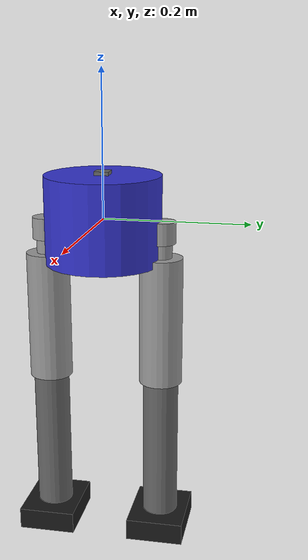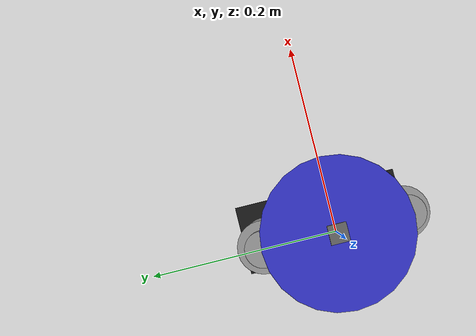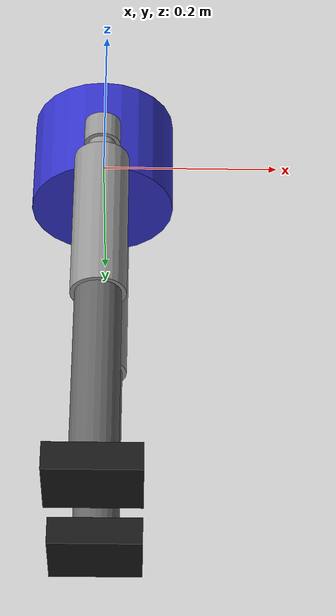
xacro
<?xml version="1.0"?>
<robot name="biped_digitigrade" xmlns:xacro="http://www.ros.org/wiki/xacro">

  <!--
    逆関節（Digitigrade/鳥脚型）二脚ロボット URDF

    特徴:
    - 膝が前方に曲がる逆関節構造
    - 片脚5関節 × 2脚（左右対称）
    - 関節構成: 腰ヨー, 股関節ロール, 股関節ピッチ, 膝ピッチ, 足首ピッチ
    - IMUリンク: 胴体上面中央に配置（強化学習・状態推定用）
  -->

  <!-- リンク長パラメータ (example_gait.pyと一致) -->
  <xacro:property name="hip_width" value="0.16" />      <!-- 左右の股関節間距離 [m] -->
  <xacro:property name="hip_yaw_length" value="0.03" /> <!-- ヨー軸リンク長 [m] -->
  <xacro:property name="hip_roll_length" value="0.02" /><!-- ロール軸リンク長 [m] -->
  <xacro:property name="thigh_length" value="0.18" />   <!-- 大腿部長さ [m] -->
  <xacro:property name="shank_length" value="0.20" />   <!-- 下腿部長さ [m] -->
  <xacro:property name="foot_length" value="0.10" />    <!-- 足部長さ [m] -->

  <!-- 視覚的なリンク半径 -->
  <xacro:property name="base_radius" value="0.08" />
  <xacro:property name="thigh_radius" value="0.03" />
  <xacro:property name="shank_radius" value="0.025" />
  <xacro:property name="foot_width" value="0.08" />
  <xacro:property name="foot_height" value="0.03" />

  <!-- マテリアル定義 -->
  <material name="blue">
    <color rgba="0.2 0.2 0.8 1.0"/>
  </material>

  <material name="gray">
    <color rgba="0.6 0.6 0.6 1.0"/>
  </material>

  <material name="dark_gray">
    <color rgba="0.4 0.4 0.4 1.0"/>
  </material>

  <material name="black">
    <color rgba="0.1 0.1 0.1 1.0"/>
  </material>

  <!-- Base Link (胴体) -->
  <link name="base_link">
    <visual>
      <origin xyz="0 0 0" rpy="0 0 0"/>
      <geometry>
        <cylinder radius="${base_radius}" length="0.12"/>
      </geometry>
      <material name="blue"/>
    </visual>
    <collision>
      <origin xyz="0 0 0" rpy="0 0 0"/>
      <geometry>
        <cylinder radius="${base_radius}" length="0.12"/>
      </geometry>
    </collision>
    <inertial>
      <mass value="3.0"/>
      <origin xyz="0 0 0" rpy="0 0 0"/>
      <inertia ixx="0.05" ixy="0" ixz="0" iyy="0.05" iyz="0" izz="0.05"/>
    </inertial>
  </link>

  <!-- IMU Link -->
  <!--
    IMUセンサの取り付け位置を定義するフレーム
    - URDFではリンク+固定ジョイントとして定義（ROS 2標準）
    - MuJoCo変換時にはsiteとして扱われ、gyro/accelerometer等のセンサを配置可能
    - 質量・慣性は無視できる程度の小さい値（シミュレーションに影響しない）
  -->
  <link name="imu_link">
    <visual>
      <origin xyz="0 0 0" rpy="0 0 0"/>
      <geometry>
        <box size="0.02 0.02 0.01"/>
      </geometry>
      <material name="dark_gray"/>
    </visual>
    <inertial>
      <mass value="0.01"/>
      <origin xyz="0 0 0" rpy="0 0 0"/>
      <inertia ixx="1e-6" ixy="0" ixz="0" iyy="1e-6" iyz="0" izz="1e-6"/>
    </inertial>
  </link>

  <joint name="imu_joint" type="fixed">
    <parent link="base_link"/>
    <child link="imu_link"/>
    <!-- IMUは胴体上面中央に配置 -->
    <origin xyz="0 0 0.06" rpy="0 0 0"/>
  </joint>

  <!-- 脚マクロ定義 -->
  <xacro:macro name="leg" params="side reflect">

    <!--
      関節命名規則:
      - 左脚 (side=left, reflect=1):  j11, j12, j13, j14, j15
      - 右脚 (side=right, reflect=-1): j21, j22, j23, j24, j25
    -->

    <!-- j11/j21: Hip Yaw Joint (腰ヨー) -->
    <joint name="${side}_hip_yaw_joint" type="revolute">
      <parent link="base_link"/>
      <child link="${side}_hip_yaw_link"/>
      <origin xyz="0 ${reflect * hip_width/2} 0" rpy="0 0 0"/>
      <axis xyz="0 0 1"/>  <!-- Z軸回転（ヨー） -->
      <limit lower="${-30 * pi / 180}" upper="${30 * pi / 180}" effort="50" velocity="5"/>
      <dynamics damping="0.1" friction="0.1"/>
    </joint>

    <link name="${side}_hip_yaw_link">
      <visual>
        <origin xyz="0 0 ${-hip_yaw_length/2}" rpy="0 0 0"/>
        <geometry>
          <cylinder radius="0.02" length="${hip_yaw_length}"/>
        </geometry>
        <material name="gray"/>
      </visual>
      <inertial>
        <mass value="0.3"/>
        <origin xyz="0 0 ${-hip_yaw_length/2}" rpy="0 0 0"/>
        <inertia ixx="0.001" ixy="0" ixz="0" iyy="0.001" iyz="0" izz="0.001"/>
      </inertial>
    </link>

    <!-- j12/j22: Hip Roll Joint (股関節ロール) -->
    <joint name="${side}_hip_roll_joint" type="revolute">
      <parent link="${side}_hip_yaw_link"/>
      <child link="${side}_hip_roll_link"/>
      <origin xyz="0 0 ${-hip_yaw_length}" rpy="0 0 0"/>
      <axis xyz="1 0 0"/>  <!-- X軸回転（ロール） -->
      <limit lower="${-20 * pi / 180}" upper="${20 * pi / 180}" effort="50" velocity="5"/>
      <dynamics damping="0.1" friction="0.1"/>
    </joint>

    <link name="${side}_hip_roll_link">
      <visual>
        <origin xyz="0 0 ${-hip_roll_length/2}" rpy="0 0 0"/>
        <geometry>
          <cylinder radius="0.015" length="${hip_roll_length}"/>
        </geometry>
        <material name="gray"/>
      </visual>
      <inertial>
        <mass value="0.2"/>
        <origin xyz="0 0 ${-hip_roll_length/2}" rpy="0 0 0"/>
        <inertia ixx="0.0005" ixy="0" ixz="0" iyy="0.0005" iyz="0" izz="0.0005"/>
      </inertial>
    </link>

    <!-- j13/j23: Hip Pitch Joint (股関節ピッチ) -->
    <joint name="${side}_hip_pitch_joint" type="revolute">
      <parent link="${side}_hip_roll_link"/>
      <child link="${side}_thigh_link"/>
      <origin xyz="0 0 ${-hip_roll_length}" rpy="0 0 0"/>
      <axis xyz="0 1 0"/>  <!-- Y軸回転（ピッチ） -->
      <limit lower="${-90 * pi / 180}" upper="${90 * pi / 180}" effort="100" velocity="10"/>
      <dynamics damping="0.2" friction="0.15"/>
    </joint>

    <link name="${side}_thigh_link">
      <visual>
        <origin xyz="0 0 ${-thigh_length/2}" rpy="0 0 0"/>
        <geometry>
          <cylinder radius="${thigh_radius}" length="${thigh_length}"/>
        </geometry>
        <material name="gray"/>
      </visual>
      <collision>
        <origin xyz="0 0 ${-thigh_length/2}" rpy="0 0 0"/>
        <geometry>
          <cylinder radius="${thigh_radius}" length="${thigh_length}"/>
        </geometry>
      </collision>
      <inertial>
        <mass value="1.0"/>
        <origin xyz="0 0 ${-thigh_length/2}" rpy="0 0 0"/>
        <inertia ixx="0.01" ixy="0" ixz="0" iyy="0.01" iyz="0" izz="0.001"/>
      </inertial>
    </link>

    <!-- j14/j24: Knee Pitch Joint (膝ピッチ) - 逆関節：前方に曲がる -->
    <joint name="${side}_knee_pitch_joint" type="revolute">
      <parent link="${side}_thigh_link"/>
      <child link="${side}_shank_link"/>
      <origin xyz="0 0 ${-thigh_length}" rpy="0 0 0"/>
      <axis xyz="0 1 0"/>  <!-- Y軸回転（ピッチ） -->
      <!-- 逆関節: 負の角度で前方に曲がる -->
      <limit lower="${-120 * pi / 180}" upper="${0 * pi / 180}" effort="100" velocity="10"/>
      <dynamics damping="0.2" friction="0.15"/>
    </joint>

    <link name="${side}_shank_link">
      <visual>
        <origin xyz="0 0 ${-shank_length/2}" rpy="0 0 0"/>
        <geometry>
          <cylinder radius="${shank_radius}" length="${shank_length}"/>
        </geometry>
        <material name="dark_gray"/>
      </visual>
      <collision>
        <origin xyz="0 0 ${-shank_length/2}" rpy="0 0 0"/>
        <geometry>
          <cylinder radius="${shank_radius}" length="${shank_length}"/>
        </geometry>
      </collision>
      <inertial>
        <mass value="0.6"/>
        <origin xyz="0 0 ${-shank_length/2}" rpy="0 0 0"/>
        <inertia ixx="0.005" ixy="0" ixz="0" iyy="0.005" iyz="0" izz="0.0005"/>
      </inertial>
    </link>

    <!-- j15/j25: Ankle Pitch Joint (足首ピッチ) -->
    <joint name="${side}_ankle_pitch_joint" type="revolute">
      <parent link="${side}_shank_link"/>
      <child link="${side}_foot_link"/>
      <origin xyz="0 0 ${-shank_length}" rpy="0 0 0"/>
      <axis xyz="0 1 0"/>  <!-- Y軸回転（ピッチ） -->
      <limit lower="${-45 * pi / 180}" upper="${135 * pi / 180}" effort="50" velocity="10"/>
      <dynamics damping="0.1" friction="0.1"/>
    </joint>

    <link name="${side}_foot_link">
      <!-- 足首関節が足部の中心に位置する -->
      <!-- 足部は前後に均等に広がる（前方 +X、後方 -X） -->
      <visual>
        <origin xyz="0 0 ${-foot_height/2}" rpy="0 0 0"/>
        <geometry>
          <box size="${foot_length} ${foot_width} ${foot_height}"/>
        </geometry>
        <material name="black"/>
      </visual>
      <collision>
        <origin xyz="0 0 ${-foot_height/2}" rpy="0 0 0"/>
        <geometry>
          <box size="${foot_length} ${foot_width} ${foot_height}"/>
        </geometry>
      </collision>
      <inertial>
        <mass value="0.3"/>
        <origin xyz="0 0 ${-foot_height/2}" rpy="0 0 0"/>
        <inertia ixx="0.001" ixy="0" ixz="0" iyy="0.001" iyz="0" izz="0.001"/>
      </inertial>
    </link>

  </xacro:macro>

  <!-- 左右の脚を生成 -->
  <xacro:leg side="left" reflect="1"/>
  <xacro:leg side="right" reflect="-1"/>

</robot>
